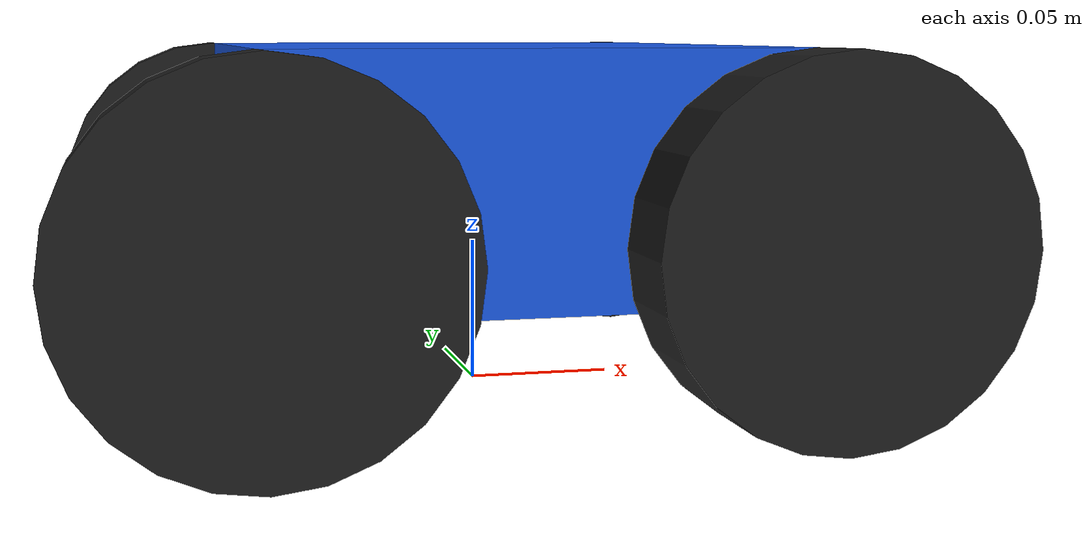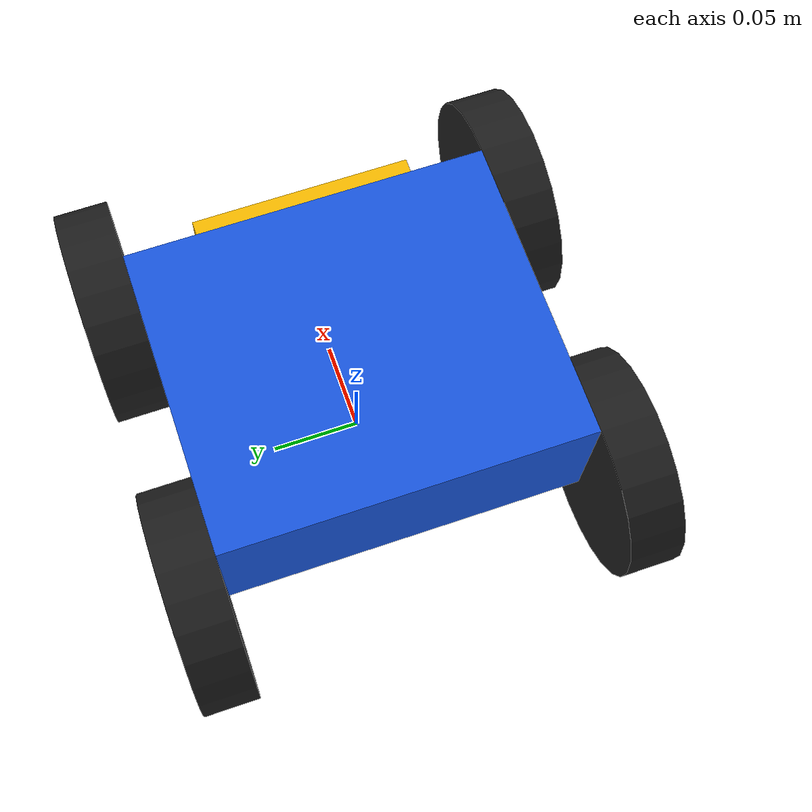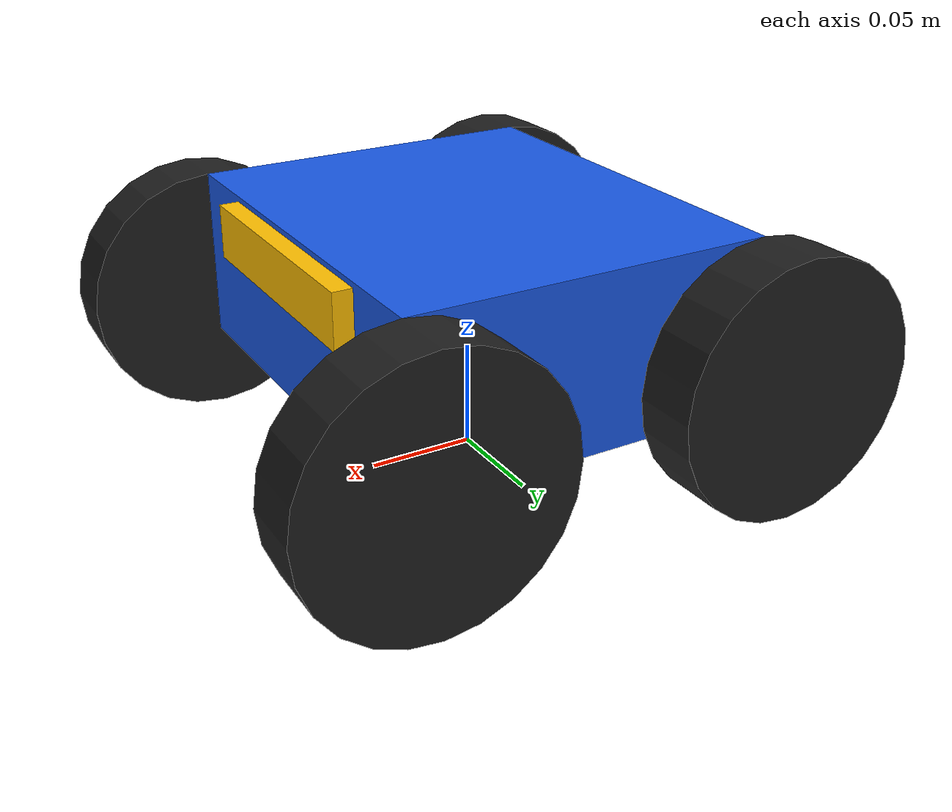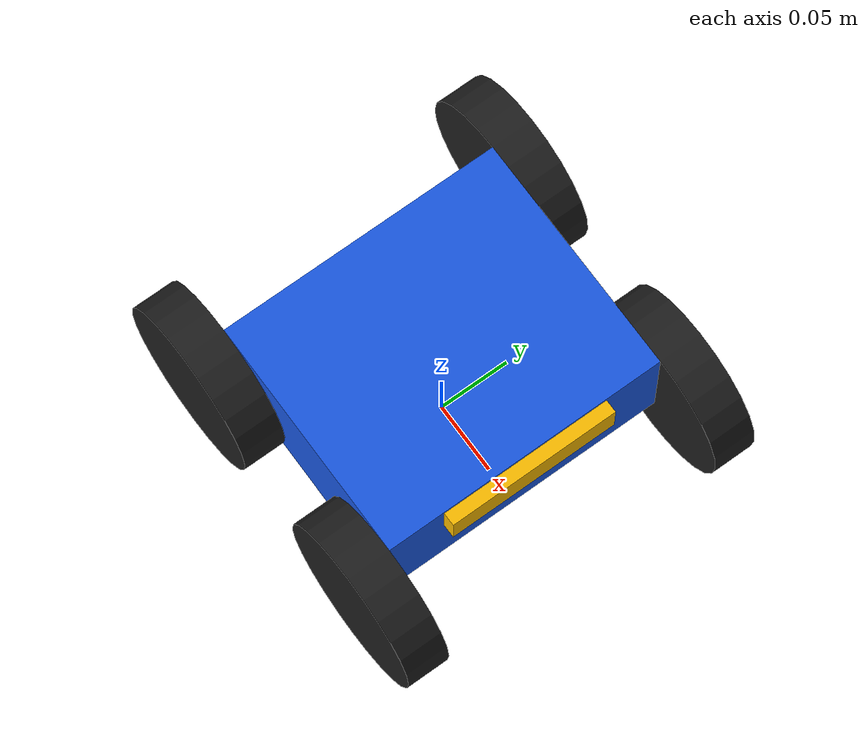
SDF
<?xml version="1.0"?>
<sdf version="1.10">
  <model name="demo_robot" xmlns:gz="http://gazebosim.org/schema">
    <static>false</static>
    <self_collide>false</self_collide>

    <!-- The chassis is 0.17 m long (X) and 0.20 m wide (Y). -->
    <link name="base_link">
      <pose>0 0 0.08 0 0 0</pose>
      <inertial>
        <mass>5.0</mass>
        <inertia>
          <ixx>0.01933</ixx>
          <iyy>0.01471</iyy>
          <izz>0.02671</izz>
        </inertia>
      </inertial>
      <collision name="chassis_collision">
        <geometry>
          <box>
            <size>0.17 0.20 0.08</size>
          </box>
        </geometry>
      </collision>
      <visual name="chassis_visual">
        <geometry>
          <box>
            <size>0.17 0.20 0.08</size>
          </box>
        </geometry>
        <material>
          <ambient>0.08 0.25 0.65 1</ambient>
          <diffuse>0.10 0.35 0.90 1</diffuse>
          <specular>0.2 0.2 0.2 1</specular>
        </material>
      </visual>
      <!-- Yellow bar marks the robot's +X (forward) side. -->
      <visual name="front_marker">
        <pose>0.088 0 0.025 0 0 0</pose>
        <geometry>
          <box>
            <size>0.012 0.12 0.025</size>
          </box>
        </geometry>
        <material>
          <ambient>1.0 0.75 0.0 1</ambient>
          <diffuse>1.0 0.75 0.0 1</diffuse>
          <specular>0.2 0.2 0.2 1</specular>
        </material>
      </visual>
      <sensor name="imu_sensor" type="imu">
        <pose>0 0 0.045 0 0 0</pose>
        <always_on>true</always_on>
        <update_rate>100</update_rate>
        <topic>/imu</topic>
      </sensor>
    </link>

    <!-- Wheel collisions use diagonal friction directions to approximate
         mecanum rollers while keeping the model lightweight. -->
    <link name="front_left_wheel">
      <pose>0.085 0.115 0.06 -1.570796 0 0</pose>
      <inertial>
        <mass>0.2</mass>
        <inertia>
          <ixx>0.000195</ixx>
          <iyy>0.000195</iyy>
          <izz>0.000360</izz>
        </inertia>
      </inertial>
      <collision name="collision">
        <geometry><sphere><radius>0.06</radius></sphere></geometry>
        <surface>
          <friction>
            <ode>
              <mu>1.0</mu>
              <mu2>0.0</mu2>
              <fdir1 gz:expressed_in="base_link">1 -1 0</fdir1>
            </ode>
          </friction>
        </surface>
      </collision>
      <visual name="visual">
        <geometry><cylinder><radius>0.06</radius><length>0.03</length></cylinder></geometry>
        <material><ambient>0.08 0.08 0.08 1</ambient><diffuse>0.12 0.12 0.12 1</diffuse></material>
      </visual>
    </link>

    <link name="front_right_wheel">
      <pose>0.085 -0.115 0.06 -1.570796 0 0</pose>
      <inertial>
        <mass>0.2</mass>
        <inertia>
          <ixx>0.000195</ixx>
          <iyy>0.000195</iyy>
          <izz>0.000360</izz>
        </inertia>
      </inertial>
      <collision name="collision">
        <geometry><sphere><radius>0.06</radius></sphere></geometry>
        <surface>
          <friction>
            <ode>
              <mu>1.0</mu>
              <mu2>0.0</mu2>
              <fdir1 gz:expressed_in="base_link">1 1 0</fdir1>
            </ode>
          </friction>
        </surface>
      </collision>
      <visual name="visual">
        <geometry><cylinder><radius>0.06</radius><length>0.03</length></cylinder></geometry>
        <material><ambient>0.08 0.08 0.08 1</ambient><diffuse>0.12 0.12 0.12 1</diffuse></material>
      </visual>
    </link>

    <link name="rear_left_wheel">
      <pose>-0.085 0.115 0.06 -1.570796 0 0</pose>
      <inertial>
        <mass>0.2</mass>
        <inertia>
          <ixx>0.000195</ixx>
          <iyy>0.000195</iyy>
          <izz>0.000360</izz>
        </inertia>
      </inertial>
      <collision name="collision">
        <geometry><sphere><radius>0.06</radius></sphere></geometry>
        <surface>
          <friction>
            <ode>
              <mu>1.0</mu>
              <mu2>0.0</mu2>
              <fdir1 gz:expressed_in="base_link">1 1 0</fdir1>
            </ode>
          </friction>
        </surface>
      </collision>
      <visual name="visual">
        <geometry><cylinder><radius>0.06</radius><length>0.03</length></cylinder></geometry>
        <material><ambient>0.08 0.08 0.08 1</ambient><diffuse>0.12 0.12 0.12 1</diffuse></material>
      </visual>
    </link>

    <link name="rear_right_wheel">
      <pose>-0.085 -0.115 0.06 -1.570796 0 0</pose>
      <inertial>
        <mass>0.2</mass>
        <inertia>
          <ixx>0.000195</ixx>
          <iyy>0.000195</iyy>
          <izz>0.000360</izz>
        </inertia>
      </inertial>
      <collision name="collision">
        <geometry><sphere><radius>0.06</radius></sphere></geometry>
        <surface>
          <friction>
            <ode>
              <mu>1.0</mu>
              <mu2>0.0</mu2>
              <fdir1 gz:expressed_in="base_link">1 -1 0</fdir1>
            </ode>
          </friction>
        </surface>
      </collision>
      <visual name="visual">
        <geometry><cylinder><radius>0.06</radius><length>0.03</length></cylinder></geometry>
        <material><ambient>0.08 0.08 0.08 1</ambient><diffuse>0.12 0.12 0.12 1</diffuse></material>
      </visual>
    </link>

    <joint name="front_left_wheel_joint" type="revolute">
      <parent>base_link</parent>
      <child>front_left_wheel</child>
      <axis>
        <xyz>0 0 1</xyz>
        <limit><effort>20</effort><velocity>100</velocity></limit>
        <dynamics><damping>0.01</damping></dynamics>
      </axis>
    </joint>
    <joint name="front_right_wheel_joint" type="revolute">
      <parent>base_link</parent>
      <child>front_right_wheel</child>
      <axis>
        <xyz>0 0 1</xyz>
        <limit><effort>20</effort><velocity>100</velocity></limit>
        <dynamics><damping>0.01</damping></dynamics>
      </axis>
    </joint>
    <joint name="rear_left_wheel_joint" type="revolute">
      <parent>base_link</parent>
      <child>rear_left_wheel</child>
      <axis>
        <xyz>0 0 1</xyz>
        <limit><effort>20</effort><velocity>100</velocity></limit>
        <dynamics><damping>0.01</damping></dynamics>
      </axis>
    </joint>
    <joint name="rear_right_wheel_joint" type="revolute">
      <parent>base_link</parent>
      <child>rear_right_wheel</child>
      <axis>
        <xyz>0 0 1</xyz>
        <limit><effort>20</effort><velocity>100</velocity></limit>
        <dynamics><damping>0.01</damping></dynamics>
      </axis>
    </joint>

    <plugin filename="gz-sim-mecanum-drive-system"
            name="gz::sim::systems::MecanumDrive">
      <front_left_joint>front_left_wheel_joint</front_left_joint>
      <front_right_joint>front_right_wheel_joint</front_right_joint>
      <back_left_joint>rear_left_wheel_joint</back_left_joint>
      <back_right_joint>rear_right_wheel_joint</back_right_joint>
      <wheel_separation>0.23</wheel_separation>
      <wheelbase>0.17</wheelbase>
      <wheel_radius>0.06</wheel_radius>
      <min_acceleration>-15</min_acceleration>
      <max_acceleration>15</max_acceleration>
      <topic>/sim_cmd_vel</topic>
      <odom_publish_frequency>50</odom_publish_frequency>
    </plugin>

    <plugin filename="gz-sim-joint-state-publisher-system"
            name="gz::sim::systems::JointStatePublisher">
      <topic>/joint_states_gz</topic>
      <joint_name>front_left_wheel_joint</joint_name>
      <joint_name>front_right_wheel_joint</joint_name>
      <joint_name>rear_left_wheel_joint</joint_name>
      <joint_name>rear_right_wheel_joint</joint_name>
      <update_rate>100</update_rate>
    </plugin>
  </model>
</sdf>
